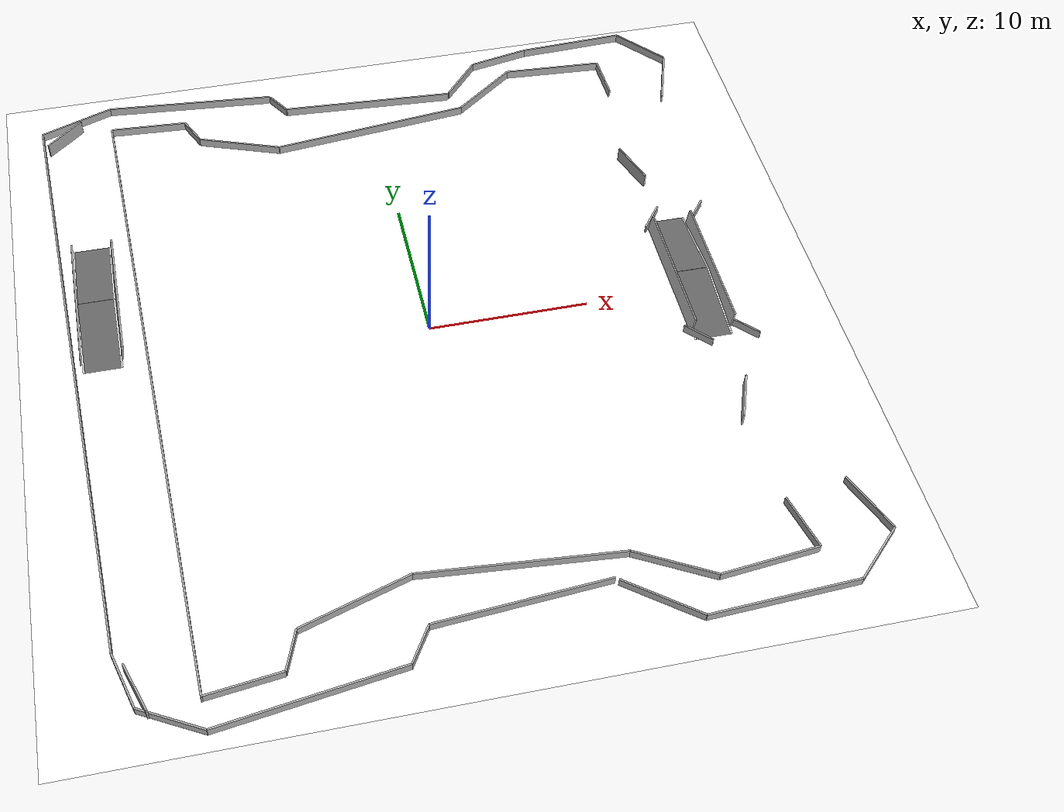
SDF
<sdf version="1.7">
 <world name="default">
  <physics name="1ms" type="ignored">
   <max_step_size>0.004</max_step_size>
   <real_time_factor>1.0</real_time_factor>
   <real_time_update_rate>250</real_time_update_rate>
  </physics>
  <scene><ambient>1 1 1 1</ambient><background>0.7 0.7 0.7 1</background><shadows>0</shadows></scene>
  <plugin filename="ignition-gazebo-physics-system" name="ignition::gazebo::systems::Physics"/>
  <plugin filename="ignition-gazebo-user-commands-system" name="ignition::gazebo::systems::UserCommands"/>
  <plugin filename="ignition-gazebo-scene-broadcaster-system" name="ignition::gazebo::systems::SceneBroadcaster"/>
  <light name="sun" type="directional">
   <cast_shadows>0</cast_shadows>
   <pose>0 0 10 0 -0 0</pose>
   <diffuse>1 1 1 1</diffuse>
   <specular>0.2 0.2 0.2 1</specular>
   <attenuation>
    <range>1000</range>
    <constant>0.9</constant>
    <linear>0.01</linear>
    <quadratic>0.001</quadratic>
   </attenuation>
   <direction>-0.5 0.1 -0.9</direction>
  </light>
  <model name="igvc_basic_ground">
   <static>true</static>
   <link name="link">
    <collision name="collision">
     <geometry><plane><normal>0 0 1</normal><size>50 50</size></plane></geometry>
     <surface><friction><ode><mu>100</mu><mu2>50</mu2></ode></friction></surface>
    </collision>
    <visual name="visual">
     <cast_shadows>false</cast_shadows>
     <geometry><plane><normal>0 0 1</normal><size>50 50</size></plane></geometry>
     <material>
      <ambient>1 1 1 1</ambient>
      <diffuse>1 1 1 1</diffuse>
      <specular>0 0 0 1</specular>
      <pbr><metal><albedo_map>IGVC_pavement.png</albedo_map><roughness>0.9</roughness></metal></pbr>
     </material>
    </visual>
   </link>
  </model>
  <spherical_coordinates>
   <surface_model>EARTH_WGS84</surface_model>
   <latitude_deg>0</latitude_deg>
   <longitude_deg>0</longitude_deg>
   <elevation>0</elevation>
   <heading_deg>0</heading_deg>
  </spherical_coordinates>
  <model name="ramp_up_1">
   <static>1</static>
   <pose>-20 2.83 0.15 0.1265364 0 0</pose>
   <link name="link">
    <collision name="collision">
     <geometry><box><size>2.214 6 0.1</size></box></geometry>
     <surface>
      <friction><ode><mu>100</mu><mu2>50</mu2><slip1>0.0</slip1><slip2>0.0</slip2></ode></friction>
     </surface>
    </collision>
    <visual name="visual">
     <geometry><box><size>2.214 6 0.1</size></box></geometry>
     <material><ambient>0.4 0.7 0.6 1</ambient><diffuse>0.4 0.4 0.4 1</diffuse></material>
    </visual>
   </link>
  </model>
  <model name="ramp_down_1">
   <static>1</static>
   <pose>-20 8.75 0.15 0.1265364 0 3.14</pose>
   <link name="link">
    <collision name="collision">
     <geometry><box><size>2.214 6 0.1</size></box></geometry>
     <surface>
      <friction><ode><mu>100</mu><mu2>50</mu2><slip1>0.0</slip1><slip2>0.0</slip2></ode></friction>
     </surface>
    </collision>
    <visual name="visual">
     <geometry><box><size>2.214 6 0.1</size></box></geometry>
     <material><ambient>0.4 0.7 0.6 1</ambient><diffuse>0.4 0.4 0.4 1</diffuse></material>
    </visual>
   </link>
  </model>
  <model name="ramp_1_wall_left">
   <static>1</static>
   <pose>-18.743 5.86 0.15 0.1265364 0 1.5708</pose>
   <link name="link">
    <collision name="collision"><geometry><box><size>9 0.1 2</size></box></geometry></collision>
    <visual name="visual"><geometry><box><size>9 0.1 2</size></box></geometry></visual>
   </link>
  </model>
  <model name="ramp_1_wall_right">
   <static>1</static>
   <pose>-21.257 5.86 0.15 0.1265364 0 1.5708</pose>
   <link name="link">
    <collision name="collision"><geometry><box><size>9 0.1 2</size></box></geometry></collision>
    <visual name="visual"><geometry><box><size>9 0.1 2</size></box></geometry></visual>
   </link>
  </model>
  <model name="ramp_up_1_lane_line_left">
   <static>1</static>
   <pose>-18.843 2.83 0.15 0.1265364 0 0</pose>
   <link name="link">
    <inertial><mass>0.1</mass><inertia><ixx>0.0001</ixx><iyy>0.0001</iyy><izz>0.0001</izz></inertia></inertial>
    <collision name="collision">
     <geometry><box><size>0.1 6 0.1</size></box></geometry>
     <surface><friction><ode><mu>0.1</mu><mu2>0.1</mu2></ode></friction></surface>
    </collision>
    <visual name="visual">
     <geometry><box><size>0.1 6 0.1</size></box></geometry>
     <material><ambient>1 1 1 1</ambient><diffuse>1 1 1 1</diffuse></material>
    </visual>
   </link>
  </model>
  <model name="ramp_up_1_lane_line_right">
   <static>1</static>
   <pose>-21.157 2.83 0.15 0.1265364 0 0</pose>
   <link name="link">
    <inertial><mass>0.1</mass><inertia><ixx>0.0001</ixx><iyy>0.0001</iyy><izz>0.0001</izz></inertia></inertial>
    <collision name="collision">
     <geometry><box><size>0.1 6 0.1</size></box></geometry>
     <surface><friction><ode><mu>0.1</mu><mu2>0.1</mu2></ode></friction></surface>
    </collision>
    <visual name="visual">
     <geometry><box><size>0.1 6 0.1</size></box></geometry>
     <material><ambient>1 1 1 1</ambient><diffuse>1 1 1 1</diffuse></material>
    </visual>
   </link>
  </model>
  <model name="ramp_down_1_lane_line_left">
   <static>1</static>
   <pose>-18.843 8.75 0.15 0.1265364 0 3.14</pose>
   <link name="link">
    <inertial><mass>0.1</mass><inertia><ixx>0.0001</ixx><iyy>0.0001</iyy><izz>0.0001</izz></inertia></inertial>
    <collision name="collision">
     <geometry><box><size>0.1 6 0.1</size></box></geometry>
     <surface><friction><ode><mu>0.1</mu><mu2>0.1</mu2></ode></friction></surface>
    </collision>
    <visual name="visual">
     <geometry><box><size>0.1 6 0.1</size></box></geometry>
     <material><ambient>1 1 1 1</ambient><diffuse>1 1 1 1</diffuse></material>
    </visual>
   </link>
  </model>
  <model name="ramp_down_1_lane_line_right">
   <static>1</static>
   <pose>-21.157 8.75 0.15 0.1265364 0 3.14</pose>
   <link name="link">
    <inertial><mass>0.1</mass><inertia><ixx>0.0001</ixx><iyy>0.0001</iyy><izz>0.0001</izz></inertia></inertial>
    <collision name="collision">
     <geometry><box><size>0.1 6 0.1</size></box></geometry>
     <surface><friction><ode><mu>0.1</mu><mu2>0.1</mu2></ode></friction></surface>
    </collision>
    <visual name="visual">
     <geometry><box><size>0.1 6 0.1</size></box></geometry>
     <material><ambient>1 1 1 1</ambient><diffuse>1 1 1 1</diffuse></material>
    </visual>
   </link>
  </model>
  <model name="barricade_1">
   <static>1</static>
   <pose>16 10.65 0.5 0 -0 1.9</pose>
   <link name="link">
    <collision name="collision"><geometry><box><size>3 0.1 1</size></box></geometry></collision>
    <visual name="visual"><geometry><box><size>3 0.1 1</size></box></geometry></visual>
   </link>
  </model>
  <model name="barricade_2">
   <static>1</static>
   <pose>17 -9.5 0.5 0 -0 1.2</pose>
   <link name="link">
    <collision name="collision"><geometry><box><size>3 0.1 1</size></box></geometry></collision>
    <visual name="visual"><geometry><box><size>3 0.1 1</size></box></geometry></visual>
   </link>
  </model>
  <model name="barricade_3">
   <static>1</static>
   <pose>-19.8 -21.17 0.5 0 -0 1.9</pose>
   <link name="link">
    <collision name="collision"><geometry><box><size>3 0.1 1</size></box></geometry></collision>
    <visual name="visual"><geometry><box><size>3 0.1 1</size></box></geometry></visual>
   </link>
  </model>
  <model name="barricade_4">
   <static>1</static>
   <pose>-21 21 0.5 0 -0 0.7</pose>
   <link name="link">
    <collision name="collision"><geometry><box><size>3 0.1 1</size></box></geometry></collision>
    <visual name="visual"><geometry><box><size>3 0.1 1</size></box></geometry></visual>
   </link>
  </model>
  <model name="ramp_up">
   <static>1</static>
   <pose>17 -2 0.15 0.1265364 -0 0</pose>
   <link name="link">
    <collision name="collision">
     <geometry><box><size>2.214 6 0.1</size></box></geometry>
     <surface>
      <friction><ode><mu>100</mu><mu2>50</mu2><slip1>0.0</slip1><slip2>0.0</slip2></ode></friction>
     </surface>
    </collision>
    <visual name="visual">
     <geometry><box><size>2.214 6 0.1</size></box></geometry>
     <material><ambient>0.4 0.7 0.6 1</ambient><diffuse>0.4 0.4 0.4 1</diffuse></material>
    </visual>
   </link>
  </model>
  <model name="ramp_down">
   <static>1</static>
   <pose>17 3.92 0.15 0.1265364 0 3.14</pose>
   <link name="link">
    <collision name="collision">
     <geometry><box><size>2.214 6 0.1</size></box></geometry>
     <surface>
      <friction><ode><mu>100</mu><mu2>50</mu2><slip1>0.0</slip1><slip2>0.0</slip2></ode></friction>
     </surface>
    </collision>
    <visual name="visual">
     <geometry><box><size>2.214 6 0.1</size></box></geometry>
     <material><ambient>0.4 0.7 0.6 1</ambient><diffuse>0.4 0.4 0.4 1</diffuse></material>
    </visual>
   </link>
  </model>
  <model name="ramp_wall_left">
   <static>1</static>
   <pose>18.257 0.96 0.15 0.1265364 -0 1.5708</pose>
   <link name="link">
    <collision name="collision"><geometry><box><size>9 0.1 2</size></box></geometry></collision>
    <visual name="visual"><geometry><box><size>9 0.1 2</size></box></geometry></visual>
   </link>
  </model>
  <model name="ramp_wall_right">
   <static>1</static>
   <pose>15.743 0.96 0.15 0.1265364 -0 1.5708</pose>
   <link name="link">
    <collision name="collision"><geometry><box><size>9 0.1 2</size></box></geometry></collision>
    <visual name="visual"><geometry><box><size>9 0.1 2</size></box></geometry></visual>
   </link>
  </model>
  <model name="ramp_up_lane_line_left">
   <static>1</static>
   <pose>18.157 -2 0.15 0.1265364 -0 0</pose>
   <link name="link">
    <inertial><mass>0.1</mass><inertia><ixx>0.0001</ixx><iyy>0.0001</iyy><izz>0.0001</izz></inertia></inertial>
    <collision name="collision">
     <geometry><box><size>0.1 6 0.1</size></box></geometry>
     <surface><friction><ode><mu>0.1</mu><mu2>0.1</mu2></ode></friction></surface>
    </collision>
    <visual name="visual">
     <geometry><box><size>0.1 6 0.1</size></box></geometry>
     <material><ambient>1 1 1 1</ambient><diffuse>1 1 1 1</diffuse></material>
    </visual>
   </link>
  </model>
  <model name="ramp_up_lane_line_right">
   <static>1</static>
   <pose>15.843 -2 0.15 0.1265364 -0 0</pose>
   <link name="link">
    <inertial><mass>0.1</mass><inertia><ixx>0.0001</ixx><iyy>0.0001</iyy><izz>0.0001</izz></inertia></inertial>
    <collision name="collision">
     <geometry><box><size>0.1 6 0.1</size></box></geometry>
     <surface><friction><ode><mu>0.1</mu><mu2>0.1</mu2></ode></friction></surface>
    </collision>
    <visual name="visual">
     <geometry><box><size>0.1 6 0.1</size></box></geometry>
     <material><ambient>1 1 1 1</ambient><diffuse>1 1 1 1</diffuse></material>
    </visual>
   </link>
  </model>
  <model name="ramp_down_lane_line_left">
   <static>1</static>
   <pose>18.157 3.92 0.15 0.1265364 0 3.14</pose>
   <link name="link">
    <inertial><mass>0.1</mass><inertia><ixx>0.0001</ixx><iyy>0.0001</iyy><izz>0.0001</izz></inertia></inertial>
    <collision name="collision">
     <geometry><box><size>0.1 6 0.1</size></box></geometry>
     <surface><friction><ode><mu>0.1</mu><mu2>0.1</mu2></ode></friction></surface>
    </collision>
    <visual name="visual">
     <geometry><box><size>0.1 6 0.1</size></box></geometry>
     <material><ambient>1 1 1 1</ambient><diffuse>1 1 1 1</diffuse></material>
    </visual>
   </link>
  </model>
  <model name="ramp_down_lane_line_right">
   <static>1</static>
   <pose>15.843 3.92 0.15 0.1265364 0 3.14</pose>
   <link name="link">
    <inertial><mass>0.1</mass><inertia><ixx>0.0001</ixx><iyy>0.0001</iyy><izz>0.0001</izz></inertia></inertial>
    <collision name="collision">
     <geometry><box><size>0.1 6 0.1</size></box></geometry>
     <surface><friction><ode><mu>0.1</mu><mu2>0.1</mu2></ode></friction></surface>
    </collision>
    <visual name="visual">
     <geometry><box><size>0.1 6 0.1</size></box></geometry>
     <material><ambient>1 1 1 1</ambient><diffuse>1 1 1 1</diffuse></material>
    </visual>
   </link>
  </model>
  <model name="outer_wall_1">
   <static>1</static>
   <pose>1 -20 0 0 -0 0.075</pose>
   <link name="link">
    <collision name="collision"><geometry><box><size>10.5 0.1 1</size></box></geometry></collision>
    <visual name="visual"><geometry><box><size>10.5 0.1 1</size></box></geometry></visual>
   </link>
  </model>
  <model name="outer_wall_2">
   <static>1</static>
   <pose>-4.9 -21.45 0 0 -0 1</pose>
   <link name="link">
    <collision name="collision"><geometry><box><size>2.5 0.1 1</size></box></geometry></collision>
    <visual name="visual"><geometry><box><size>2.5 0.1 1</size></box></geometry></visual>
   </link>
  </model>
  <model name="outer_wall_3">
   <static>1</static>
   <pose>-11 -23.25 0 0 -0 0.14</pose>
   <link name="link">
    <collision name="collision"><geometry><box><size>11 0.1 1</size></box></geometry></collision>
    <visual name="visual"><geometry><box><size>11 0.1 1</size></box></geometry></visual>
   </link>
  </model>
  <model name="outer_wall_4">
   <static>1</static>
   <pose>-18.2 -23.06 0 0 -0 -0.5</pose>
   <link name="link">
    <collision name="collision"><geometry><box><size>4 0.1 1</size></box></geometry></collision>
    <visual name="visual"><geometry><box><size>4 0.1 1</size></box></geometry></visual>
   </link>
  </model>
  <model name="outer_wall_5">
   <static>1</static>
   <pose>-20.42 -20.41 0 0 -0 -1.3</pose>
   <link name="link">
    <collision name="collision"><geometry><box><size>3.5 0.1 1</size></box></geometry></collision>
    <visual name="visual"><geometry><box><size>3.5 0.1 1</size></box></geometry></visual>
   </link>
  </model>
  <model name="outer_wall_6">
   <static>1</static>
   <pose>-21.71 1.51 0 0 -0 -1.53</pose>
   <link name="link">
    <collision name="collision"><geometry><box><size>40.5 0.1 1</size></box></geometry></collision>
    <visual name="visual"><geometry><box><size>40.5 0.1 1</size></box></geometry></visual>
   </link>
  </model>
  <model name="outer_wall_7">
   <static>1</static>
   <pose>-20.18 22.58 0 0 -0 -2.8</pose>
   <link name="link">
    <collision name="collision"><geometry><box><size>5 0.1 1</size></box></geometry></collision>
    <visual name="visual"><geometry><box><size>5 0.1 1</size></box></geometry></visual>
   </link>
  </model>
  <model name="outer_wall_8">
   <static>1</static>
   <pose>-12.34 22.96 0 0 -0 3.05818</pose>
   <link name="link">
    <collision name="collision"><geometry><box><size>11 0.1 1</size></box></geometry></collision>
    <visual name="visual"><geometry><box><size>11 0.1 1</size></box></geometry></visual>
   </link>
  </model>
  <model name="outer_wall_9">
   <static>1</static>
   <pose>-6.3 21.7 0 0 -0 2.13319</pose>
   <link name="link">
    <collision name="collision"><geometry><box><size>1.8 0.1 1</size></box></geometry></collision>
    <visual name="visual"><geometry><box><size>1.8 0.1 1</size></box></geometry></visual>
   </link>
  </model>
  <model name="outer_wall_10">
   <static>1</static>
   <pose>-0.18 20.65 0 0 -0 3.08318</pose>
   <link name="link">
    <collision name="collision"><geometry><box><size>11.25 0.1 1</size></box></geometry></collision>
    <visual name="visual"><geometry><box><size>11.25 0.1 1</size></box></geometry></visual>
   </link>
  </model>
  <model name="outer_wall_11">
   <static>1</static>
   <pose>6.7 21.69 0 0 -0 -2.3</pose>
   <link name="link">
    <collision name="collision"><geometry><box><size>3.5 0.1 1</size></box></geometry></collision>
    <visual name="visual"><geometry><box><size>3.5 0.1 1</size></box></geometry></visual>
   </link>
  </model>
  <model name="outer_wall_12">
   <static>1</static>
   <pose>9.83 23.37 0 0 -0 -2.95</pose>
   <link name="link">
    <collision name="collision"><geometry><box><size>4 0.1 1</size></box></geometry></collision>
    <visual name="visual"><geometry><box><size>4 0.1 1</size></box></geometry></visual>
   </link>
  </model>
  <model name="outer_wall_13">
   <static>1</static>
   <pose>15.29 23.9 0 0 -0 -3.1</pose>
   <link name="link">
    <collision name="collision"><geometry><box><size>7 0.1 1</size></box></geometry></collision>
    <visual name="visual"><geometry><box><size>7 0.1 1</size></box></geometry></visual>
   </link>
  </model>
  <model name="outer_wall_14">
   <static>1</static>
   <pose>20.09 22.53 0 0 -0 2.28319</pose>
   <link name="link">
    <collision name="collision"><geometry><box><size>4 0.1 1</size></box></geometry></collision>
    <visual name="visual"><geometry><box><size>4 0.1 1</size></box></geometry></visual>
   </link>
  </model>
  <model name="outer_wall_15">
   <static>1</static>
   <pose>20.75 19 0 0 -0 -1.9</pose>
   <link name="link">
    <collision name="collision"><geometry><box><size>4 0.1 1</size></box></geometry></collision>
    <visual name="visual"><geometry><box><size>4 0.1 1</size></box></geometry></visual>
   </link>
  </model>
  <model name="outer_wall_16">
   <static>1</static>
   <pose>19 6 0 0 -0 0.9</pose>
   <link name="link">
    <collision name="collision"><geometry><box><size>2 0.1 1</size></box></geometry></collision>
    <visual name="visual"><geometry><box><size>2 0.1 1</size></box></geometry></visual>
   </link>
  </model>
  <model name="outer_wall_17">
   <static>1</static>
   <pose>19 -4 0 0 -0 -0.8</pose>
   <link name="link">
    <collision name="collision"><geometry><box><size>2 0.1 1</size></box></geometry></collision>
    <visual name="visual"><geometry><box><size>2 0.1 1</size></box></geometry></visual>
   </link>
  </model>
  <model name="outer_wall_18">
   <static>1</static>
   <pose>21.6 -17.75 0 0 -0 1.94</pose>
   <link name="link">
    <collision name="collision"><geometry><box><size>4 0.1 1</size></box></geometry></collision>
    <visual name="visual"><geometry><box><size>4 0.1 1</size></box></geometry></visual>
   </link>
  </model>
  <model name="outer_wall_19">
   <static>1</static>
   <pose>20.86 -20.98 0 0 -0 0.75</pose>
   <link name="link">
    <collision name="collision"><geometry><box><size>4 0.1 1</size></box></geometry></collision>
    <visual name="visual"><geometry><box><size>4 0.1 1</size></box></geometry></visual>
   </link>
  </model>
  <model name="outer_wall_20">
   <static>1</static>
   <pose>14.9 -22.57 0 0 -0 0.05</pose>
   <link name="link">
    <collision name="collision"><geometry><box><size>9 0.1 1</size></box></geometry></collision>
    <visual name="visual"><geometry><box><size>9 0.1 1</size></box></geometry></visual>
   </link>
  </model>
  <model name="outer_wall_21">
   <static>1</static>
   <pose>8.41 -21.28 0 0 -0 -0.65</pose>
   <link name="link">
    <collision name="collision"><geometry><box><size>5 0.1 1</size></box></geometry></collision>
    <visual name="visual"><geometry><box><size>5 0.1 1</size></box></geometry></visual>
   </link>
  </model>
  <model name="inner_wall_1">
   <static>1</static>
   <pose>16 6 0 0 -0 0.9</pose>
   <link name="link">
    <collision name="collision"><geometry><box><size>2 0.1 1</size></box></geometry></collision>
    <visual name="visual"><geometry><box><size>2 0.1 1</size></box></geometry></visual>
   </link>
  </model>
  <model name="inner_wall_2">
   <static>1</static>
   <pose>16 -4 0 0 -0 -0.8</pose>
   <link name="link">
    <collision name="collision"><geometry><box><size>2 0.1 1</size></box></geometry></collision>
    <visual name="visual"><geometry><box><size>2 0.1 1</size></box></geometry></visual>
   </link>
  </model>
  <model name="inner_wall_3">
   <static>1</static>
   <pose>17.46 -18.25 0 0 -0 1.8</pose>
   <link name="link">
    <collision name="collision"><geometry><box><size>3.5 0.1 1</size></box></geometry></collision>
    <visual name="visual"><geometry><box><size>3.5 0.1 1</size></box></geometry></visual>
   </link>
  </model>
  <model name="inner_wall_4">
   <static>1</static>
   <pose>14.87 -20.25 0 0 -0 0.1</pose>
   <link name="link">
    <collision name="collision"><geometry><box><size>6 0.1 1</size></box></geometry></collision>
    <visual name="visual"><geometry><box><size>6 0.1 1</size></box></geometry></visual>
   </link>
  </model>
  <model name="inner_wall_5">
   <static>1</static>
   <pose>9.69 -19.35 0 0 -0 -0.5</pose>
   <link name="link">
    <collision name="collision"><geometry><box><size>5 0.1 1</size></box></geometry></collision>
    <visual name="visual"><geometry><box><size>5 0.1 1</size></box></geometry></visual>
   </link>
  </model>
  <model name="inner_wall_6">
   <static>1</static>
   <pose>1.5 -17.67 0 0 -0 -0.08</pose>
   <link name="link">
    <collision name="collision"><geometry><box><size>12 0.1 1</size></box></geometry></collision>
    <visual name="visual"><geometry><box><size>12 0.1 1</size></box></geometry></visual>
   </link>
  </model>
  <model name="inner_wall_7">
   <static>1</static>
   <pose>-7.82 -18.22 0 0 -0 0.3</pose>
   <link name="link">
    <collision name="collision"><geometry><box><size>7 0.1 1</size></box></geometry></collision>
    <visual name="visual"><geometry><box><size>7 0.1 1</size></box></geometry></visual>
   </link>
  </model>
  <model name="inner_wall_8">
   <static>1</static>
   <pose>-11.62 -20.42 0 0 -0 1.2</pose>
   <link name="link">
    <collision name="collision"><geometry><box><size>2.5 0.1 1</size></box></geometry></collision>
    <visual name="visual"><geometry><box><size>2.5 0.1 1</size></box></geometry></visual>
   </link>
  </model>
  <model name="inner_wall_9">
   <static>1</static>
   <pose>-14.31 -21.85 0 0 -0 0.12</pose>
   <link name="link">
    <collision name="collision"><geometry><box><size>4.5 0.1 1</size></box></geometry></collision>
    <visual name="visual"><geometry><box><size>4.5 0.1 1</size></box></geometry></visual>
   </link>
  </model>
  <model name="inner_wall_10">
   <static>1</static>
   <pose>-17.2 -0.45 0 0 -0 -1.54</pose>
   <link name="link">
    <collision name="collision"><geometry><box><size>43.5 0.1 1</size></box></geometry></collision>
    <visual name="visual"><geometry><box><size>43.5 0.1 1</size></box></geometry></visual>
   </link>
  </model>
  <model name="inner_wall_11">
   <static>1</static>
   <pose>-15.37 21.14 0 0 -0 3.08318</pose>
   <link name="link">
    <collision name="collision"><geometry><box><size>5 0.1 1</size></box></geometry></collision>
    <visual name="visual"><geometry><box><size>5 0.1 1</size></box></geometry></visual>
   </link>
  </model>
  <model name="inner_wall_12">
   <static>1</static>
   <pose>-12.46 20.08 0 0 -0 2</pose>
   <link name="link">
    <collision name="collision"><geometry><box><size>2 0.1 1</size></box></geometry></collision>
    <visual name="visual"><geometry><box><size>2 0.1 1</size></box></geometry></visual>
   </link>
  </model>
  <model name="inner_wall_13">
   <static>1</static>
   <pose>-9.45 18.25 0 0 -0 2.8</pose>
   <link name="link">
    <collision name="collision"><geometry><box><size>5.5 0.1 1</size></box></geometry></collision>
    <visual name="visual"><geometry><box><size>5.5 0.1 1</size></box></geometry></visual>
   </link>
  </model>
  <model name="inner_wall_14">
   <static>1</static>
   <pose>-0.4 18.03 0 0 -0 -3.03319</pose>
   <link name="link">
    <collision name="collision"><geometry><box><size>13 0.1 1</size></box></geometry></collision>
    <visual name="visual"><geometry><box><size>13 0.1 1</size></box></geometry></visual>
   </link>
  </model>
  <model name="inner_wall_15">
   <static>1</static>
   <pose>8.06 20.23 0 0 -0 -2.5</pose>
   <link name="link">
    <collision name="collision"><geometry><box><size>5 0.1 1</size></box></geometry></collision>
    <visual name="visual"><geometry><box><size>5 0.1 1</size></box></geometry></visual>
   </link>
  </model>
  <model name="inner_wall_16">
   <static>1</static>
   <pose>13.31 21.54 0 0 -0 3.08318</pose>
   <link name="link">
    <collision name="collision"><geometry><box><size>6.5 0.1 1</size></box></geometry></collision>
    <visual name="visual"><geometry><box><size>6.5 0.1 1</size></box></geometry></visual>
   </link>
  </model>
  <model name="inner_wall_17">
   <static>1</static>
   <pose>16.6 19.85 0 0 -0 1.6</pose>
   <link name="link">
    <collision name="collision"><geometry><box><size>3 0.1 1</size></box></geometry></collision>
    <visual name="visual"><geometry><box><size>3 0.1 1</size></box></geometry></visual>
   </link>
  </model>
 </world>
</sdf>
